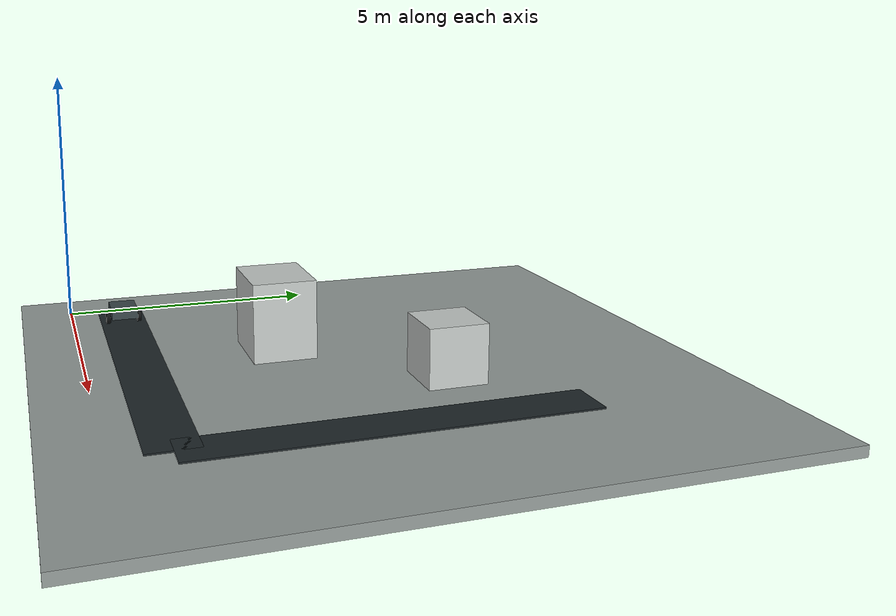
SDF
<?xml version="1.0" ?>
<sdf version="1.10">
  <world name="atlas_terrain">
    <gravity>0 0 -9.81</gravity>
    <physics name="physics" type="ignored"><max_step_size>0.004</max_step_size><real_time_factor>1.0</real_time_factor></physics>
    <plugin filename="gz-sim-physics-system" name="gz::sim::systems::Physics"/>
    <plugin filename="gz-sim-user-commands-system" name="gz::sim::systems::UserCommands"/>
    <plugin filename="gz-sim-scene-broadcaster-system" name="gz::sim::systems::SceneBroadcaster"/>
    <light type="directional" name="sun"><pose>0 0 10 0 0 0</pose><cast_shadows>true</cast_shadows><diffuse>0.8 0.82 0.82 1</diffuse><direction>-0.5 0.3 -0.8</direction></light>
    <model name="terrain"><static>true</static><link name="ground"><collision name="collision"><geometry><box><size>12 12 .2</size></box></geometry></collision><visual name="visual"><geometry><box><size>12 12 .2</size></box></geometry><material><diffuse>.58 .61 .60 1</diffuse></material></visual><pose>5 5 -.1 0 0 0</pose></link></model>
    <!-- Dark navigable road segments. The bright blocks are impassable obstacles. -->
    <model name="road_east"><static>true</static><link name="link"><pose>4 1 .015 0 0 0</pose><visual name="v"><geometry><box><size>8 .9 .03</size></box></geometry><material><diffuse>.12 .15 .16 1</diffuse></material></visual></link></model>
    <model name="road_north"><static>true</static><link name="link"><pose>8 4.5 .015 0 0 0</pose><visual name="v"><geometry><box><size>.9 7 .03</size></box></geometry><material><diffuse>.12 .15 .16 1</diffuse></material></visual></link></model>
    <model name="obstacle_a"><static>true</static><link name="link"><pose>3.7 3.6 .75 0 0 0</pose><collision name="c"><geometry><box><size>1.5 1.2 1.5</size></box></geometry></collision><visual name="v"><geometry><box><size>1.5 1.2 1.5</size></box></geometry><material><diffuse>.78 .8 .79 1</diffuse></material></visual></link></model>
    <model name="obstacle_b"><static>true</static><link name="link"><pose>6.2 6.1 .55 0 0 0</pose><collision name="c"><geometry><box><size>1.1 1.1 1.1</size></box></geometry></collision><visual name="v"><geometry><box><size>1.1 1.1 1.1</size></box></geometry><material><diffuse>.78 .8 .79 1</diffuse></material></visual></link></model>
    <model name="atlas_rover">
      <pose>1 1 .28 0 0 0</pose>
      <link name="chassis"><inertial><mass>8</mass><inertia><ixx>.2</ixx><iyy>.3</iyy><izz>.4</izz></inertia></inertial><collision name="c"><geometry><box><size>.72 .52 .2</size></box></geometry></collision><visual name="v"><geometry><box><size>.72 .52 .2</size></box></geometry><material><diffuse>.23 .28 .29 1</diffuse></material></visual></link>
      <link name="left_wheel"><pose>0 .31 -.12 1.5708 0 0</pose><collision name="c"><geometry><cylinder><radius>.14</radius><length>.08</length></cylinder></geometry></collision><visual name="v"><geometry><cylinder><radius>.14</radius><length>.08</length></cylinder></geometry><material><diffuse>.07 .08 .08 1</diffuse></material></visual></link>
      <link name="right_wheel"><pose>0 -.31 -.12 1.5708 0 0</pose><collision name="c"><geometry><cylinder><radius>.14</radius><length>.08</length></cylinder></geometry></collision><visual name="v"><geometry><cylinder><radius>.14</radius><length>.08</length></cylinder></geometry><material><diffuse>.07 .08 .08 1</diffuse></material></visual></link>
      <joint name="left_wheel_joint" type="revolute"><parent>chassis</parent><child>left_wheel</child><axis><xyz>0 1 0</xyz><limit><lower>-1e16</lower><upper>1e16</upper></limit></axis></joint>
      <joint name="right_wheel_joint" type="revolute"><parent>chassis</parent><child>right_wheel</child><axis><xyz>0 1 0</xyz><limit><lower>-1e16</lower><upper>1e16</upper></limit></axis></joint>
      <plugin filename="gz-sim-diff-drive-system" name="gz::sim::systems::DiffDrive"><left_joint>left_wheel_joint</left_joint><right_joint>right_wheel_joint</right_joint><wheel_separation>.62</wheel_separation><wheel_radius>.14</wheel_radius><topic>/model/atlas_rover/cmd_vel</topic><odom_topic>/model/atlas_rover/odometry</odom_topic><frame_id>world</frame_id><child_frame_id>atlas_rover</child_frame_id></plugin>
    </model>
  </world>
</sdf>
